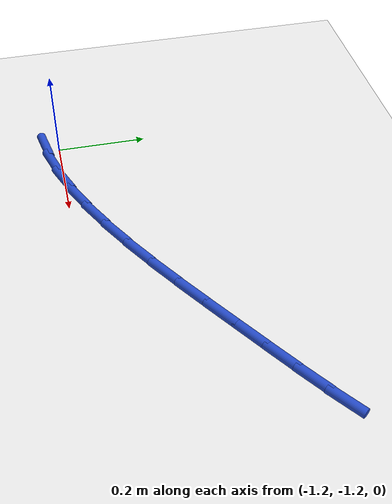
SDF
<sdf version="1.6">
 <world name="default">
  <model name="ground_plane">
   <static>1</static>
   <link name="link">
    <collision name="collision">
     <geometry><plane><normal>0 0 1</normal><size>100 100</size></plane></geometry>
     <surface><friction><ode><mu>100</mu><mu2>50</mu2></ode></friction></surface>
    </collision>
    <visual name="visual">
     <cast_shadows>0</cast_shadows>
     <geometry><plane><normal>0 0 1</normal><size>100 100</size></plane></geometry>
     <material>
      <script><uri>file://media/materials/scripts/gazebo.material</uri><name>Gazebo/WhiteGlow</name></script>
     </material>
    </visual>
   </link>
  </model>
  <model name="line">
   <link name="link_83">
    <pose>-1.2087302682816712 -1.2293937422827717 0.01 0 1.57 0.1759878418234335</pose>
    <collision name="collision">
     <geometry><cylinder><radius>0.01</radius><length>0.08</length></cylinder></geometry>
    </collision>
    <visual name="visual">
     <material>
      <script><name>Gazebo/Blue</name><uri>file://media/materials/scripts/gazebo.material</uri></script>
     </material>
     <geometry><cylinder><radius>0.01</radius><length>0.08</length></cylinder></geometry>
    </visual>
   </link>
   <link name="link_84">
    <pose>-1.148519802542438 -1.218686664575614 0.01 0 1.57 0.2833195128500834</pose>
    <collision name="collision">
     <geometry><cylinder><radius>0.01</radius><length>0.08</length></cylinder></geometry>
    </collision>
    <visual name="visual">
     <material>
      <script><name>Gazebo/Blue</name><uri>file://media/materials/scripts/gazebo.material</uri></script>
     </material>
     <geometry><cylinder><radius>0.01</radius><length>0.08</length></cylinder></geometry>
    </visual>
   </link>
   <link name="link_85">
    <pose>-1.0870240424160238 -1.200782065296728 0.01 0 1.57 0.3691504854427367</pose>
    <collision name="collision">
     <geometry><cylinder><radius>0.01</radius><length>0.08</length></cylinder></geometry>
    </collision>
    <visual name="visual">
     <material>
      <script><name>Gazebo/Blue</name><uri>file://media/materials/scripts/gazebo.material</uri></script>
     </material>
     <geometry><cylinder><radius>0.01</radius><length>0.08</length></cylinder></geometry>
    </visual>
   </link>
   <link name="link_86">
    <pose>-1.0245471173172371 -1.176610607053777 0.01 0 1.57 0.4370926347969483</pose>
    <collision name="collision">
     <geometry><cylinder><radius>0.01</radius><length>0.08</length></cylinder></geometry>
    </collision>
    <visual name="visual">
     <material>
      <script><name>Gazebo/Blue</name><uri>file://media/materials/scripts/gazebo.material</uri></script>
     </material>
     <geometry><cylinder><radius>0.01</radius><length>0.08</length></cylinder></geometry>
    </visual>
   </link>
   <link name="link_87">
    <pose>-0.961393156660883 -1.1471029524544207 0.01 0 1.57 0.4903517776891263</pose>
    <collision name="collision">
     <geometry><cylinder><radius>0.01</radius><length>0.08</length></cylinder></geometry>
    </collision>
    <visual name="visual">
     <material>
      <script><name>Gazebo/Blue</name><uri>file://media/materials/scripts/gazebo.material</uri></script>
     </material>
     <geometry><cylinder><radius>0.01</radius><length>0.08</length></cylinder></geometry>
    </visual>
   </link>
   <link name="link_88">
    <pose>-0.8978662898617706 -1.1131897641063238 0.01 0 1.57 0.5314770416003574</pose>
    <collision name="collision">
     <geometry><cylinder><radius>0.01</radius><length>0.08</length></cylinder></geometry>
    </collision>
    <visual name="visual">
     <material>
      <script><name>Gazebo/Blue</name><uri>file://media/materials/scripts/gazebo.material</uri></script>
     </material>
     <geometry><cylinder><radius>0.01</radius><length>0.08</length></cylinder></geometry>
    </visual>
   </link>
   <link name="link_89">
    <pose>-0.8342706463347055 -1.075801704617146 0.01 0 1.57 0.5623594190483702</pose>
    <collision name="collision">
     <geometry><cylinder><radius>0.01</radius><length>0.08</length></cylinder></geometry>
    </collision>
    <visual name="visual">
     <material>
      <script><name>Gazebo/Blue</name><uri>file://media/materials/scripts/gazebo.material</uri></script>
     </material>
     <geometry><cylinder><radius>0.01</radius><length>0.08</length></cylinder></geometry>
    </visual>
   </link>
   <link name="link_90">
    <pose>-0.7709103554944958 -1.0358694365945504 0.01 0 1.57 0.5843047355182678</pose>
    <collision name="collision">
     <geometry><cylinder><radius>0.01</radius><length>0.08</length></cylinder></geometry>
    </collision>
    <visual name="visual">
     <material>
      <script><name>Gazebo/Blue</name><uri>file://media/materials/scripts/gazebo.material</uri></script>
     </material>
     <geometry><cylinder><radius>0.01</radius><length>0.08</length></cylinder></geometry>
    </visual>
   </link>
   <link name="link_91">
    <pose>-0.7080895467559473 -0.9943236226461987 0.01 0 1.57 0.5981051023962121</pose>
    <collision name="collision">
     <geometry><cylinder><radius>0.01</radius><length>0.08</length></cylinder></geometry>
    </collision>
    <visual name="visual">
     <material>
      <script><name>Gazebo/Blue</name><uri>file://media/materials/scripts/gazebo.material</uri></script>
     </material>
     <geometry><cylinder><radius>0.01</radius><length>0.08</length></cylinder></geometry>
    </visual>
   </link>
   <link name="link_92">
    <pose>-0.646112349533869 -0.9520949253797535 0.01 0 1.57 0.604078674146745</pose>
    <collision name="collision">
     <geometry><cylinder><radius>0.01</radius><length>0.08</length></cylinder></geometry>
    </collision>
    <visual name="visual">
     <material>
      <script><name>Gazebo/Blue</name><uri>file://media/materials/scripts/gazebo.material</uri></script>
     </material>
     <geometry><cylinder><radius>0.01</radius><length>0.08</length></cylinder></geometry>
    </visual>
   </link>
   <link name="link_93">
    <pose>-0.5852828932430656 -0.9101140074028754 0.01 0 1.57 0.6048537959223647</pose>
    <collision name="collision">
     <geometry><cylinder><radius>0.01</radius><length>0.08</length></cylinder></geometry>
    </collision>
    <visual name="visual">
     <material>
      <script><name>Gazebo/Blue</name><uri>file://media/materials/scripts/gazebo.material</uri></script>
     </material>
     <geometry><cylinder><radius>0.01</radius><length>0.08</length></cylinder></geometry>
    </visual>
   </link>
   <link name="link_94">
    <pose>-0.5259075291353805 -0.8690686383405675 0.01 0 1.57 0.6119370520301002</pose>
    <collision name="collision">
     <geometry><cylinder><radius>0.01</radius><length>0.08</length></cylinder></geometry>
    </collision>
    <visual name="visual">
     <material>
      <script><name>Gazebo/Blue</name><uri>file://media/materials/scripts/gazebo.material</uri></script>
     </material>
     <geometry><cylinder><radius>0.01</radius><length>0.08</length></cylinder></geometry>
    </visual>
   </link>
   <link name="link_95">
    <pose>-0.46830181065882365 -0.8286405964511058 0.01 0 1.57 0.6289437044739583</pose>
    <collision name="collision">
     <geometry><cylinder><radius>0.01</radius><length>0.08</length></cylinder></geometry>
    </collision>
    <visual name="visual">
     <material>
      <script><name>Gazebo/Blue</name><uri>file://media/materials/scripts/gazebo.material</uri></script>
     </material>
     <geometry><cylinder><radius>0.01</radius><length>0.08</length></cylinder></geometry>
    </visual>
   </link>
   <link name="link_96">
    <pose>-0.41278367329102206 -0.7882512546305129 0.01 0 1.57 0.6565633564959675</pose>
    <collision name="collision">
     <geometry><cylinder><radius>0.01</radius><length>0.08</length></cylinder></geometry>
    </collision>
    <visual name="visual">
     <material>
      <script><name>Gazebo/Blue</name><uri>file://media/materials/scripts/gazebo.material</uri></script>
     </material>
     <geometry><cylinder><radius>0.01</radius><length>0.08</length></cylinder></geometry>
    </visual>
   </link>
  </model>
 </world>
</sdf>
